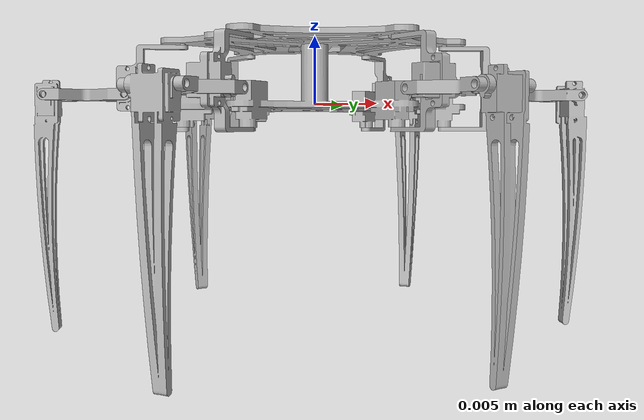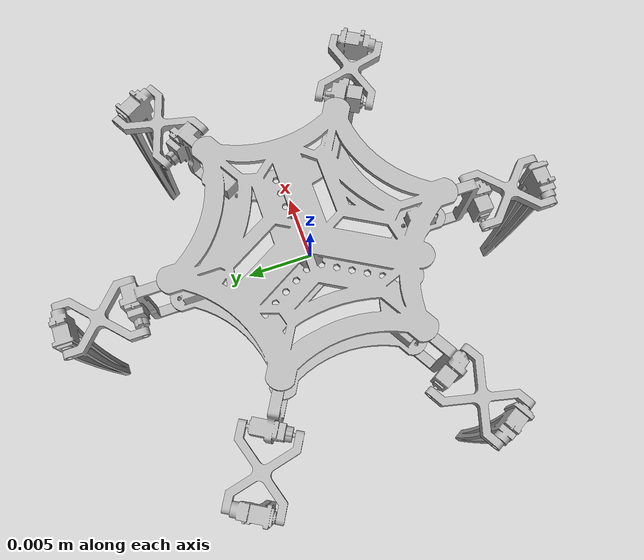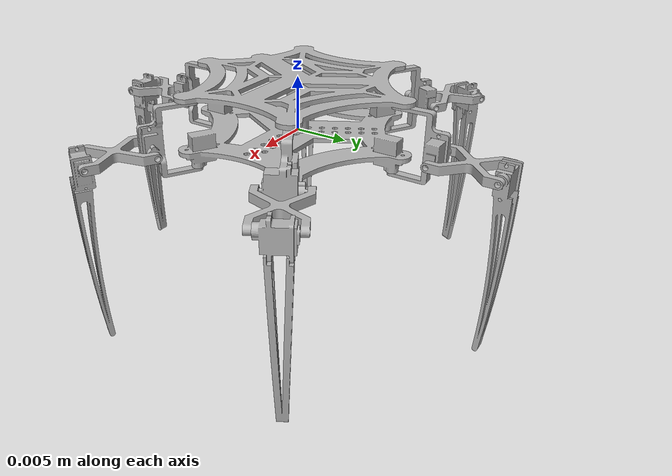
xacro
<?xml version="1.0" ?>
<robot name="Hexapod" xmlns:xacro="http://www.ros.org/wiki/xacro">

<xacro:include filename="$(find Hexapod_description)/urdf/materials.xacro" />
<xacro:include filename="$(find Hexapod_description)/urdf/Hexapod.trans" />
<xacro:include filename="$(find Hexapod_description)/urdf/Hexapod.gazebo" />
<link name="base_link">
  <inertial>
    <origin xyz="-0.00024779552396185864 -0.00042919443756299575 0.01786555183363758" rpy="0 0 0"/>
    <mass value="0.268499661491972"/>
    <inertia ixx="0.000846" iyy="0.00084" izz="0.001399" ixy="-5e-06" iyz="0.0" ixz="0.0"/>
  </inertial>
  <visual>
    <origin xyz="0 0 0" rpy="0 0 0"/>
    <geometry>
      <mesh filename="package://Hexapod_description/meshes/base_link.stl" scale="0.001 0.001 0.001"/>
    </geometry>
    <material name="silver"/>
  </visual>
  <collision>
    <origin xyz="0 0 0" rpy="0 0 0"/>
    <geometry>
      <mesh filename="package://Hexapod_description/meshes/base_link.stl" scale="0.001 0.001 0.001"/>
    </geometry>
  </collision>
</link>

<link name="link1_leg_1">
  <inertial>
    <origin xyz="-0.0017430642102742027 -0.03547015815353616 0.031247840645581143" rpy="0 0 0"/>
    <mass value="0.015069066247602798"/>
    <inertia ixx="5e-06" iyy="4e-06" izz="2e-06" ixy="-0.0" iyz="-0.0" ixz="0.0"/>
  </inertial>
  <visual>
    <origin xyz="-0.0 0.097 0.020031" rpy="0 0 0"/>
    <geometry>
      <mesh filename="package://Hexapod_description/meshes/link1_leg_1.stl" scale="0.001 0.001 0.001"/>
    </geometry>
    <material name="silver"/>
  </visual>
  <collision>
    <origin xyz="-0.0 0.097 0.020031" rpy="0 0 0"/>
    <geometry>
      <mesh filename="package://Hexapod_description/meshes/link1_leg_1.stl" scale="0.001 0.001 0.001"/>
    </geometry>
  </collision>
</link>

<link name="link2_leg_1">
  <inertial>
    <origin xyz="-0.01900012134190108 -0.028555749819059117 0.00149958616155198" rpy="0 0 0"/>
    <mass value="0.009216641564308658"/>
    <inertia ixx="2e-06" iyy="2e-06" izz="4e-06" ixy="-0.0" iyz="0.0" ixz="-0.0"/>
  </inertial>
  <visual>
    <origin xyz="-0.017 0.137 -0.004969" rpy="0 0 0"/>
    <geometry>
      <mesh filename="package://Hexapod_description/meshes/link2_leg_1.stl" scale="0.001 0.001 0.001"/>
    </geometry>
    <material name="silver"/>
  </visual>
  <collision>
    <origin xyz="-0.017 0.137 -0.004969" rpy="0 0 0"/>
    <geometry>
      <mesh filename="package://Hexapod_description/meshes/link2_leg_1.stl" scale="0.001 0.001 0.001"/>
    </geometry>
  </collision>
</link>

<link name="link3_leg_1">
  <inertial>
    <origin xyz="0.018591415382673657 -0.0008816820817776905 -0.04832214100208743" rpy="0 0 0"/>
    <mass value="0.022178646106605013"/>
    <inertia ixx="6.6e-05" iyy="6.7e-05" izz="1e-06" ixy="0.0" iyz="-0.0" ixz="0.0"/>
  </inertial>
  <visual>
    <origin xyz="0.019 0.19415 -0.004969" rpy="0 0 0"/>
    <geometry>
      <mesh filename="package://Hexapod_description/meshes/link3_leg_1.stl" scale="0.001 0.001 0.001"/>
    </geometry>
    <material name="silver"/>
  </visual>
  <collision>
    <origin xyz="0.019 0.19415 -0.004969" rpy="0 0 0"/>
    <geometry>
      <mesh filename="package://Hexapod_description/meshes/link3_leg_1.stl" scale="0.001 0.001 0.001"/>
    </geometry>
  </collision>
</link>

<link name="link1_leg_2">
  <inertial>
    <origin xyz="0.02984699009916751 -0.01924461696329302 0.031247840645581143" rpy="0 0 0"/>
    <mass value="0.015069066247602798"/>
    <inertia ixx="4e-06" iyy="4e-06" izz="2e-06" ixy="0.0" iyz="0.0" ixz="0.0"/>
  </inertial>
  <visual>
    <origin xyz="-0.084004 0.0485 0.020031" rpy="0 0 0"/>
    <geometry>
      <mesh filename="package://Hexapod_description/meshes/link1_leg_2.stl" scale="0.001 0.001 0.001"/>
    </geometry>
    <material name="silver"/>
  </visual>
  <collision>
    <origin xyz="-0.084004 0.0485 0.020031" rpy="0 0 0"/>
    <geometry>
      <mesh filename="package://Hexapod_description/meshes/link1_leg_2.stl" scale="0.001 0.001 0.001"/>
    </geometry>
  </collision>
</link>

<link name="link1_leg_3">
  <inertial>
    <origin xyz="0.03159005430944173 0.01622554119024315 0.031247840645581143" rpy="0 0 0"/>
    <mass value="0.015069066247602798"/>
    <inertia ixx="4e-06" iyy="5e-06" izz="2e-06" ixy="-0.0" iyz="0.0" ixz="-0.0"/>
  </inertial>
  <visual>
    <origin xyz="-0.084004 -0.0485 0.020031" rpy="0 0 0"/>
    <geometry>
      <mesh filename="package://Hexapod_description/meshes/link1_leg_3.stl" scale="0.001 0.001 0.001"/>
    </geometry>
    <material name="silver"/>
  </visual>
  <collision>
    <origin xyz="-0.084004 -0.0485 0.020031" rpy="0 0 0"/>
    <geometry>
      <mesh filename="package://Hexapod_description/meshes/link1_leg_3.stl" scale="0.001 0.001 0.001"/>
    </geometry>
  </collision>
</link>

<link name="link1_leg_4">
  <inertial>
    <origin xyz="0.0017430642102742185 0.03547015815353616 0.031247840645581143" rpy="0 0 0"/>
    <mass value="0.015069066247602798"/>
    <inertia ixx="5e-06" iyy="4e-06" izz="2e-06" ixy="-0.0" iyz="0.0" ixz="-0.0"/>
  </inertial>
  <visual>
    <origin xyz="0.0 -0.097 0.020031" rpy="0 0 0"/>
    <geometry>
      <mesh filename="package://Hexapod_description/meshes/link1_leg_4.stl" scale="0.001 0.001 0.001"/>
    </geometry>
    <material name="silver"/>
  </visual>
  <collision>
    <origin xyz="0.0 -0.097 0.020031" rpy="0 0 0"/>
    <geometry>
      <mesh filename="package://Hexapod_description/meshes/link1_leg_4.stl" scale="0.001 0.001 0.001"/>
    </geometry>
  </collision>
</link>

<link name="link1_leg_5">
  <inertial>
    <origin xyz="-0.02984699009916747 0.019244616963293062 0.031247840645581143" rpy="0 0 0"/>
    <mass value="0.015069066247602798"/>
    <inertia ixx="4e-06" iyy="4e-06" izz="2e-06" ixy="0.0" iyz="-0.0" ixz="-0.0"/>
  </inertial>
  <visual>
    <origin xyz="0.084004 -0.0485 0.020031" rpy="0 0 0"/>
    <geometry>
      <mesh filename="package://Hexapod_description/meshes/link1_leg_5.stl" scale="0.001 0.001 0.001"/>
    </geometry>
    <material name="silver"/>
  </visual>
  <collision>
    <origin xyz="0.084004 -0.0485 0.020031" rpy="0 0 0"/>
    <geometry>
      <mesh filename="package://Hexapod_description/meshes/link1_leg_5.stl" scale="0.001 0.001 0.001"/>
    </geometry>
  </collision>
</link>

<link name="link1_leg_6">
  <inertial>
    <origin xyz="-0.03159005430944177 -0.016225541190243067 0.031247840645581143" rpy="0 0 0"/>
    <mass value="0.015069066247602798"/>
    <inertia ixx="4e-06" iyy="5e-06" izz="2e-06" ixy="-0.0" iyz="-0.0" ixz="0.0"/>
  </inertial>
  <visual>
    <origin xyz="0.084004 0.0485 0.020031" rpy="0 0 0"/>
    <geometry>
      <mesh filename="package://Hexapod_description/meshes/link1_leg_6.stl" scale="0.001 0.001 0.001"/>
    </geometry>
    <material name="silver"/>
  </visual>
  <collision>
    <origin xyz="0.084004 0.0485 0.020031" rpy="0 0 0"/>
    <geometry>
      <mesh filename="package://Hexapod_description/meshes/link1_leg_6.stl" scale="0.001 0.001 0.001"/>
    </geometry>
  </collision>
</link>

<link name="link2_leg_6">
  <inertial>
    <origin xyz="-0.0172305457568368 -0.13482371901679172 0.00149958616155198" rpy="0 0 0"/>
    <mass value="0.009216641564308658"/>
    <inertia ixx="2e-06" iyy="2e-06" izz="4e-06" ixy="-0.0" iyz="-0.0" ixz="-0.0"/>
  </inertial>
  <visual>
    <origin xyz="0.127145 -0.053778 -0.004969" rpy="0 0 0"/>
    <geometry>
      <mesh filename="package://Hexapod_description/meshes/link2_leg_6.stl" scale="0.001 0.001 0.001"/>
    </geometry>
    <material name="silver"/>
  </visual>
  <collision>
    <origin xyz="0.127145 -0.053778 -0.004969" rpy="0 0 0"/>
    <geometry>
      <mesh filename="package://Hexapod_description/meshes/link2_leg_6.stl" scale="0.001 0.001 0.001"/>
    </geometry>
  </collision>
</link>

<link name="link2_leg_5">
  <inertial>
    <origin xyz="-0.2525204244149356 0.001288030802267387 0.00149958616155198" rpy="0 0 0"/>
    <mass value="0.009216641564308658"/>
    <inertia ixx="2e-06" iyy="2e-06" izz="4e-06" ixy="0.0" iyz="0.0" ixz="0.0"/>
  </inertial>
  <visual>
    <origin xyz="-0.110145 -0.083222 -0.004969" rpy="0 0 0"/>
    <geometry>
      <mesh filename="package://Hexapod_description/meshes/link2_leg_5.stl" scale="0.001 0.001 0.001"/>
    </geometry>
    <material name="silver"/>
  </visual>
  <collision>
    <origin xyz="-0.110145 -0.083222 -0.004969" rpy="0 0 0"/>
    <geometry>
      <mesh filename="package://Hexapod_description/meshes/link2_leg_5.stl" scale="0.001 0.001 0.001"/>
    </geometry>
  </collision>
</link>

<link name="link2_leg_4">
  <inertial>
    <origin xyz="-0.014999878658098905 0.3025557498190592 0.00149958616155198" rpy="0 0 0"/>
    <mass value="0.009216641564308658"/>
    <inertia ixx="2e-06" iyy="2e-06" izz="4e-06" ixy="-0.0" iyz="0.0" ixz="0.0"/>
  </inertial>
  <visual>
    <origin xyz="-0.017 0.137 -0.004969" rpy="0 0 0"/>
    <geometry>
      <mesh filename="package://Hexapod_description/meshes/link2_leg_4.stl" scale="0.001 0.001 0.001"/>
    </geometry>
    <material name="silver"/>
  </visual>
  <collision>
    <origin xyz="-0.017 0.137 -0.004969" rpy="0 0 0"/>
    <geometry>
      <mesh filename="package://Hexapod_description/meshes/link2_leg_4.stl" scale="0.001 0.001 0.001"/>
    </geometry>
  </collision>
</link>

<link name="link2_leg_3">
  <inertial>
    <origin xyz="0.2715205457568368 0.027267719016791793 0.00149958616155198" rpy="0 0 0"/>
    <mass value="0.009216641564308658"/>
    <inertia ixx="2e-06" iyy="2e-06" izz="4e-06" ixy="-0.0" iyz="0.0" ixz="0.0"/>
  </inertial>
  <visual>
    <origin xyz="0.127145 -0.053778 -0.004969" rpy="0 0 0"/>
    <geometry>
      <mesh filename="package://Hexapod_description/meshes/link2_leg_3.stl" scale="0.001 0.001 0.001"/>
    </geometry>
    <material name="silver"/>
  </visual>
  <collision>
    <origin xyz="0.127145 -0.053778 -0.004969" rpy="0 0 0"/>
    <geometry>
      <mesh filename="package://Hexapod_description/meshes/link2_leg_3.stl" scale="0.001 0.001 0.001"/>
    </geometry>
  </collision>
</link>

<link name="link2_leg_2">
  <inertial>
    <origin xyz="0.03223042441493566 -0.16773203080226734 0.00149958616155198" rpy="0 0 0"/>
    <mass value="0.009216641564308658"/>
    <inertia ixx="2e-06" iyy="2e-06" izz="4e-06" ixy="0.0" iyz="0.0" ixz="0.0"/>
  </inertial>
  <visual>
    <origin xyz="-0.110145 -0.083222 -0.004969" rpy="0 0 0"/>
    <geometry>
      <mesh filename="package://Hexapod_description/meshes/link2_leg_2.stl" scale="0.001 0.001 0.001"/>
    </geometry>
    <material name="silver"/>
  </visual>
  <collision>
    <origin xyz="-0.110145 -0.083222 -0.004969" rpy="0 0 0"/>
    <geometry>
      <mesh filename="package://Hexapod_description/meshes/link2_leg_2.stl" scale="0.001 0.001 0.001"/>
    </geometry>
  </collision>
</link>

<link name="link3_leg_2">
  <inertial>
    <origin xyz="-0.013940901083033391 -0.17849068569908902 -0.04832214100208743" rpy="0 0 0"/>
    <mass value="0.022178646106605013"/>
    <inertia ixx="6.7e-05" iyy="6.6e-05" izz="1e-06" ixy="-0.0" iyz="0.0" ixz="0.0"/>
  </inertial>
  <visual>
    <origin xyz="-0.182639 -0.080621 -0.004969" rpy="0 0 0"/>
    <geometry>
      <mesh filename="package://Hexapod_description/meshes/link3_leg_2.stl" scale="0.001 0.001 0.001"/>
    </geometry>
    <material name="silver"/>
  </visual>
  <collision>
    <origin xyz="-0.182639 -0.080621 -0.004969" rpy="0 0 0"/>
    <geometry>
      <mesh filename="package://Hexapod_description/meshes/link3_leg_2.stl" scale="0.001 0.001 0.001"/>
    </geometry>
  </collision>
</link>

<link name="link3_leg_3">
  <inertial>
    <origin xyz="0.327745683534293 -0.02502800361731132 -0.04832214100208743" rpy="0 0 0"/>
    <mass value="0.022178646106605013"/>
    <inertia ixx="6.7e-05" iyy="6.6e-05" izz="1e-06" ixy="0.0" iyz="0.0" ixz="-0.0"/>
  </inertial>
  <visual>
    <origin xyz="0.158639 -0.12219 -0.004969" rpy="0 0 0"/>
    <geometry>
      <mesh filename="package://Hexapod_description/meshes/link3_leg_3.stl" scale="0.001 0.001 0.001"/>
    </geometry>
    <material name="silver"/>
  </visual>
  <collision>
    <origin xyz="0.158639 -0.12219 -0.004969" rpy="0 0 0"/>
    <geometry>
      <mesh filename="package://Hexapod_description/meshes/link3_leg_3.stl" scale="0.001 0.001 0.001"/>
    </geometry>
  </collision>
</link>

<link name="link3_leg_4">
  <inertial>
    <origin xyz="0.029408584617326365 0.38918168208177767 -0.04832214100208743" rpy="0 0 0"/>
    <mass value="0.022178646106605013"/>
    <inertia ixx="6.6e-05" iyy="6.7e-05" izz="1e-06" ixy="0.0" iyz="0.0" ixz="-0.0"/>
  </inertial>
  <visual>
    <origin xyz="0.029 0.19415 -0.004969" rpy="0 0 0"/>
    <geometry>
      <mesh filename="package://Hexapod_description/meshes/link3_leg_4.stl" scale="0.001 0.001 0.001"/>
    </geometry>
    <material name="silver"/>
  </visual>
  <collision>
    <origin xyz="0.029 0.19415 -0.004969" rpy="0 0 0"/>
    <geometry>
      <mesh filename="package://Hexapod_description/meshes/link3_leg_4.stl" scale="0.001 0.001 0.001"/>
    </geometry>
  </collision>
</link>

<link name="link3_leg_5">
  <inertial>
    <origin xyz="-0.3463370989169665 0.025909685699089108 -0.04832214100208743" rpy="0 0 0"/>
    <mass value="0.022178646106605013"/>
    <inertia ixx="6.7e-05" iyy="6.6e-05" izz="1e-06" ixy="-0.0" iyz="-0.0" ixz="-0.0"/>
  </inertial>
  <visual>
    <origin xyz="-0.177639 -0.07196 -0.004969" rpy="0 0 0"/>
    <geometry>
      <mesh filename="package://Hexapod_description/meshes/link3_leg_5.stl" scale="0.001 0.001 0.001"/>
    </geometry>
    <material name="silver"/>
  </visual>
  <collision>
    <origin xyz="-0.177639 -0.07196 -0.004969" rpy="0 0 0"/>
    <geometry>
      <mesh filename="package://Hexapod_description/meshes/link3_leg_5.stl" scale="0.001 0.001 0.001"/>
    </geometry>
  </collision>
</link>

<link name="link3_leg_6">
  <inertial>
    <origin xyz="-0.015467683534293009 -0.21069099638268857 -0.04832214100208743" rpy="0 0 0"/>
    <mass value="0.022178646106605013"/>
    <inertia ixx="6.7e-05" iyy="6.6e-05" izz="1e-06" ixy="0.0" iyz="-0.0" ixz="0.0"/>
  </inertial>
  <visual>
    <origin xyz="0.153639 -0.113529 -0.004969" rpy="0 0 0"/>
    <geometry>
      <mesh filename="package://Hexapod_description/meshes/link3_leg_6.stl" scale="0.001 0.001 0.001"/>
    </geometry>
    <material name="silver"/>
  </visual>
  <collision>
    <origin xyz="0.153639 -0.113529 -0.004969" rpy="0 0 0"/>
    <geometry>
      <mesh filename="package://Hexapod_description/meshes/link3_leg_6.stl" scale="0.001 0.001 0.001"/>
    </geometry>
  </collision>
</link>

<joint name="joint1_leg1" type="revolute">
  <origin xyz="0.0 -0.097 -0.020031" rpy="0 0 0"/>
  <parent link="base_link"/>
  <child link="link1_leg_1"/>
  <axis xyz="0.0 -0.0 -1.0"/>
  <limit upper="1.570796" lower="-1.570796" effort="100" velocity="100"/>
</joint>

<joint name="joint2_leg1" type="revolute">
  <origin xyz="0.017 -0.04 0.025" rpy="0 0 0"/>
  <parent link="link1_leg_1"/>
  <child link="link2_leg_1"/>
  <axis xyz="1.0 0.0 0.0"/>
  <limit upper="1.570796" lower="-0.785398" effort="100" velocity="100"/>
</joint>

<joint name="joint3_leg1" type="revolute">
  <origin xyz="-0.036 -0.05715 0.0" rpy="0 0 0"/>
  <parent link="link2_leg_1"/>
  <child link="link3_leg_1"/>
  <axis xyz="1.0 -0.0 0.0"/>
  <limit upper="0.523599" lower="-3.141593" effort="100" velocity="100"/>
</joint>

<joint name="joint1_leg2" type="revolute">
  <origin xyz="0.084004 -0.0485 -0.020031" rpy="0 0 0"/>
  <parent link="base_link"/>
  <child link="link1_leg_2"/>
  <axis xyz="0.0 0.0 -1.0"/>
  <limit upper="1.570796" lower="-1.570796" effort="100" velocity="100"/>
</joint>

<joint name="joint1_leg3" type="revolute">
  <origin xyz="0.084004 0.0485 -0.020031" rpy="0 0 0"/>
  <parent link="base_link"/>
  <child link="link1_leg_3"/>
  <axis xyz="0.0 0.0 -1.0"/>
  <limit upper="1.570796" lower="-1.570796" effort="100" velocity="100"/>
</joint>

<joint name="joint1_leg4" type="revolute">
  <origin xyz="0.0 0.097 -0.020031" rpy="0 0 0"/>
  <parent link="base_link"/>
  <child link="link1_leg_4"/>
  <axis xyz="-0.0 0.0 -1.0"/>
  <limit upper="1.570796" lower="-1.570796" effort="100" velocity="100"/>
</joint>

<joint name="joint1_leg5" type="revolute">
  <origin xyz="-0.084004 0.0485 -0.020031" rpy="0 0 0"/>
  <parent link="base_link"/>
  <child link="link1_leg_5"/>
  <axis xyz="-0.0 -0.0 -1.0"/>
  <limit upper="1.570796" lower="-1.570796" effort="100" velocity="100"/>
</joint>

<joint name="joint1_leg6" type="revolute">
  <origin xyz="-0.084004 -0.0485 -0.020031" rpy="0 0 0"/>
  <parent link="base_link"/>
  <child link="link1_leg_6"/>
  <axis xyz="-0.0 -0.0 -1.0"/>
  <limit upper="1.570796" lower="-1.570796" effort="100" velocity="100"/>
</joint>

<joint name="joint2_leg6" type="revolute">
  <origin xyz="-0.043141 0.102278 0.025" rpy="0 0 0"/>
  <parent link="link1_leg_6"/>
  <child link="link2_leg_6"/>
  <axis xyz="0.5 -0.866025 0.0"/>
  <limit upper="1.570796" lower="-0.785398" effort="100" velocity="100"/>
</joint>

<joint name="joint2_leg5" type="revolute">
  <origin xyz="0.194149 0.034722 0.025" rpy="0 0 0"/>
  <parent link="link1_leg_5"/>
  <child link="link2_leg_5"/>
  <axis xyz="-0.5 -0.866025 0.0"/>
  <limit upper="1.570796" lower="-0.785398" effort="100" velocity="100"/>
</joint>

<joint name="joint2_leg4" type="revolute">
  <origin xyz="0.017 -0.234 0.025" rpy="0 0 0"/>
  <parent link="link1_leg_4"/>
  <child link="link2_leg_4"/>
  <axis xyz="-1.0 0.0 0.0"/>
  <limit upper="1.570796" lower="-0.785398" effort="100" velocity="100"/>
</joint>

<joint name="joint2_leg3" type="revolute">
  <origin xyz="-0.211149 0.005278 0.025" rpy="0 0 0"/>
  <parent link="link1_leg_3"/>
  <child link="link2_leg_3"/>
  <axis xyz="-0.5 0.866025 0.0"/>
  <limit upper="1.570796" lower="-0.785398" effort="100" velocity="100"/>
</joint>

<joint name="joint2_leg2" type="revolute">
  <origin xyz="0.026141 0.131722 0.025" rpy="0 0 0"/>
  <parent link="link1_leg_2"/>
  <child link="link2_leg_2"/>
  <axis xyz="0.5 0.866025 0.0"/>
  <limit upper="1.570796" lower="-0.785398" effort="100" velocity="100"/>
</joint>

<joint name="joint3_leg2" type="revolute">
  <origin xyz="0.072494 -0.002601 0.0" rpy="0 0 0"/>
  <parent link="link2_leg_2"/>
  <child link="link3_leg_2"/>
  <axis xyz="0.5 0.866025 0.0"/>
  <limit upper="0.523599" lower="-3.141593" effort="100" velocity="100"/>
</joint>

<joint name="joint3_leg3" type="revolute">
  <origin xyz="-0.031494 0.068412 0.0" rpy="0 0 0"/>
  <parent link="link2_leg_3"/>
  <child link="link3_leg_3"/>
  <axis xyz="-0.5 0.866025 0.0"/>
  <limit upper="0.523599" lower="-3.141593" effort="100" velocity="100"/>
</joint>

<joint name="joint3_leg4" type="revolute">
  <origin xyz="-0.046 -0.05715 0.0" rpy="0 0 0"/>
  <parent link="link2_leg_4"/>
  <child link="link3_leg_4"/>
  <axis xyz="-1.0 0.0 0.0"/>
  <limit upper="0.523599" lower="-3.141593" effort="100" velocity="100"/>
</joint>

<joint name="joint3_leg5" type="revolute">
  <origin xyz="0.067494 -0.011262 0.0" rpy="0 0 0"/>
  <parent link="link2_leg_5"/>
  <child link="link3_leg_5"/>
  <axis xyz="-0.5 -0.866025 0.0"/>
  <limit upper="0.523599" lower="-3.141593" effort="100" velocity="100"/>
</joint>

<joint name="joint3_leg6" type="revolute">
  <origin xyz="-0.026494 0.059751 0.0" rpy="0 0 0"/>
  <parent link="link2_leg_6"/>
  <child link="link3_leg_6"/>
  <axis xyz="0.5 -0.866025 0.0"/>
  <limit upper="0.523599" lower="-3.141593" effort="100" velocity="100"/>
</joint>

</robot>

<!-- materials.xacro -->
<robot name="My_Hexapod" xmlns:xacro="http://www.ros.org/wiki/xacro" >

<material name="silver">
  <color rgba="0.700 0.700 0.700 1.000"/>
</material>

</robot>

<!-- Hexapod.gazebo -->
<robot name="Hexapod" xmlns:xacro="http://www.ros.org/wiki/xacro" >

<xacro:property name="body_color" value="Gazebo/Silver" />

<gazebo>
  <plugin name="control" filename="libgazebo_ros_control.so"/>
</gazebo>
<gazebo reference="base_link">
  <material>${body_color}</material>
  <mu1>0.2</mu1>
  <mu2>0.2</mu2>
  <selfCollide>true</selfCollide>
  <gravity>true</gravity>
</gazebo>

<gazebo reference="link1_leg_1">
  <material>${body_color}</material>
  <mu1>0.2</mu1>
  <mu2>0.2</mu2>
  <selfCollide>true</selfCollide>
</gazebo>

<gazebo reference="link2_leg_1">
  <material>${body_color}</material>
  <mu1>0.2</mu1>
  <mu2>0.2</mu2>
  <selfCollide>true</selfCollide>
</gazebo>

<gazebo reference="link3_leg_1">
  <material>${body_color}</material>
  <mu1>0.2</mu1>
  <mu2>0.2</mu2>
  <selfCollide>true</selfCollide>
</gazebo>

<gazebo reference="link1_leg_2">
  <material>${body_color}</material>
  <mu1>0.2</mu1>
  <mu2>0.2</mu2>
  <selfCollide>true</selfCollide>
</gazebo>

<gazebo reference="link1_leg_3">
  <material>${body_color}</material>
  <mu1>0.2</mu1>
  <mu2>0.2</mu2>
  <selfCollide>true</selfCollide>
</gazebo>

<gazebo reference="link1_leg_4">
  <material>${body_color}</material>
  <mu1>0.2</mu1>
  <mu2>0.2</mu2>
  <selfCollide>true</selfCollide>
</gazebo>

<gazebo reference="link1_leg_5">
  <material>${body_color}</material>
  <mu1>0.2</mu1>
  <mu2>0.2</mu2>
  <selfCollide>true</selfCollide>
</gazebo>

<gazebo reference="link1_leg_6">
  <material>${body_color}</material>
  <mu1>0.2</mu1>
  <mu2>0.2</mu2>
  <selfCollide>true</selfCollide>
</gazebo>

<gazebo reference="link2_leg_6">
  <material>${body_color}</material>
  <mu1>0.2</mu1>
  <mu2>0.2</mu2>
  <selfCollide>true</selfCollide>
</gazebo>

<gazebo reference="link2_leg_5">
  <material>${body_color}</material>
  <mu1>0.2</mu1>
  <mu2>0.2</mu2>
  <selfCollide>true</selfCollide>
</gazebo>

<gazebo reference="link2_leg_4">
  <material>${body_color}</material>
  <mu1>0.2</mu1>
  <mu2>0.2</mu2>
  <selfCollide>true</selfCollide>
</gazebo>

<gazebo reference="link2_leg_3">
  <material>${body_color}</material>
  <mu1>0.2</mu1>
  <mu2>0.2</mu2>
  <selfCollide>true</selfCollide>
</gazebo>

<gazebo reference="link2_leg_2">
  <material>${body_color}</material>
  <mu1>0.2</mu1>
  <mu2>0.2</mu2>
  <selfCollide>true</selfCollide>
</gazebo>

<gazebo reference="link3_leg_2">
  <material>${body_color}</material>
  <mu1>0.2</mu1>
  <mu2>0.2</mu2>
  <selfCollide>true</selfCollide>
</gazebo>

<gazebo reference="link3_leg_3">
  <material>${body_color}</material>
  <mu1>0.2</mu1>
  <mu2>0.2</mu2>
  <selfCollide>true</selfCollide>
</gazebo>

<gazebo reference="link3_leg_4">
  <material>${body_color}</material>
  <mu1>0.2</mu1>
  <mu2>0.2</mu2>
  <selfCollide>true</selfCollide>
</gazebo>

<gazebo reference="link3_leg_5">
  <material>${body_color}</material>
  <mu1>0.2</mu1>
  <mu2>0.2</mu2>
  <selfCollide>true</selfCollide>
</gazebo>

<gazebo reference="link3_leg_6">
  <material>${body_color}</material>
  <mu1>0.2</mu1>
  <mu2>0.2</mu2>
  <selfCollide>true</selfCollide>
</gazebo>

</robot>
